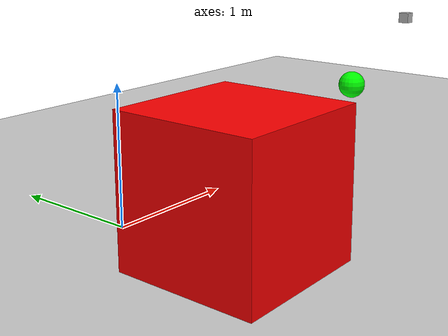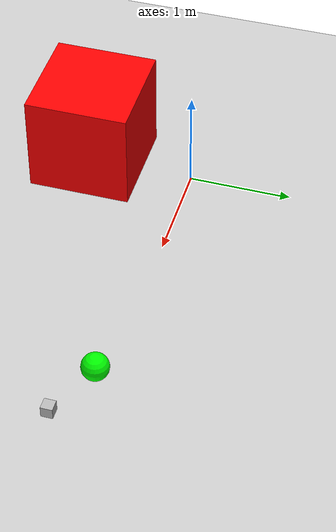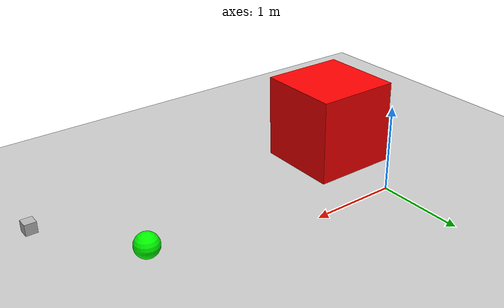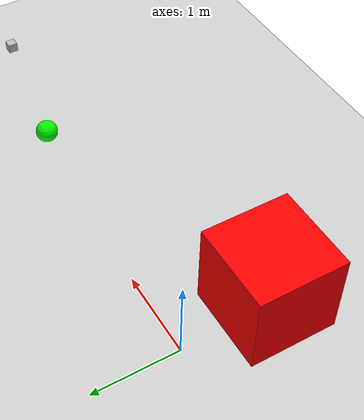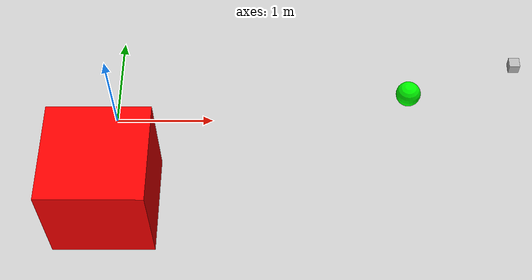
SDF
<?xml version="1.0" ?>
<!--
  Demo world with a widget displaying images coming from a camera sensor.
-->
<sdf version="1.6">
  <world name="camera_sensor">
    <!-- WORLD SETTINGS -->
    <physics name="1ms" type="ignored">
      <max_step_size>0.001</max_step_size>
      <real_time_factor>1.0</real_time_factor>
    </physics>
    <plugin
      filename="ignition-gazebo-physics-system"
      name="gz::sim::systems::Physics"> </plugin>
    <plugin
      filename="ignition-gazebo-sensors-system"
      name="gz::sim::systems::Sensors">
      <render_engine>ogre</render_engine>
    </plugin>
    <plugin
      filename="ignition-gazebo-user-commands-system"
      name="gz::sim::systems::UserCommands">
    </plugin>
    <plugin
      filename="ignition-gazebo-scene-broadcaster-system"
      name="gz::sim::systems::SceneBroadcaster">
    </plugin>

    <scene>
      <ambient>1.0 1.0 1.0</ambient>
      <background>0.8 0.8 0.8</background>
      <grid>true</grid>
    </scene>

    <gui fullscreen="0">

      <!-- 3D scene -->
      <plugin filename="MinimalScene" name="3D View">
        <ignition-gui>
          <title>3D View</title>
          <property type="bool" key="showTitleBar">false</property>
          <property type="string" key="state">docked</property>
        </ignition-gui>

        <engine>ogre2</engine>
        <scene>scene</scene>
        <ambient_light>0.4 0.4 0.4</ambient_light>
        <background_color>0.8 0.8 0.8</background_color>
        <camera_pose>-6 0 6 0 0.5 0</camera_pose>
      </plugin>

      <!-- Plugins that add functionality to the scene -->
      <plugin filename="EntityContextMenuPlugin" name="Entity context menu">
        <ignition-gui>
          <property key="state" type="string">floating</property>
          <property key="width" type="double">5</property>
          <property key="height" type="double">5</property>
          <property key="showTitleBar" type="bool">false</property>
        </ignition-gui>
      </plugin>
      <plugin filename="GzSceneManager" name="Scene Manager">
        <ignition-gui>
          <property key="resizable" type="bool">false</property>
          <property key="width" type="double">5</property>
          <property key="height" type="double">5</property>
          <property key="state" type="string">floating</property>
          <property key="showTitleBar" type="bool">false</property>
        </ignition-gui>
      </plugin>
      <plugin filename="InteractiveViewControl" name="Interactive view control">
        <ignition-gui>
          <property key="resizable" type="bool">false</property>
          <property key="width" type="double">5</property>
          <property key="height" type="double">5</property>
          <property key="state" type="string">floating</property>
          <property key="showTitleBar" type="bool">false</property>
        </ignition-gui>
      </plugin>
      <plugin filename="CameraTracking" name="Camera Tracking">
        <ignition-gui>
          <property key="resizable" type="bool">false</property>
          <property key="width" type="double">5</property>
          <property key="height" type="double">5</property>
          <property key="state" type="string">floating</property>
          <property key="showTitleBar" type="bool">false</property>
        </ignition-gui>
      </plugin>
      <!-- World control -->
      <plugin filename="WorldControl" name="World control">
        <ignition-gui>
          <title>World control</title>
          <property type="bool" key="showTitleBar">false</property>
          <property type="bool" key="resizable">false</property>
          <property type="double" key="height">72</property>
          <property type="double" key="width">121</property>
          <property type="double" key="z">1</property>

          <property type="string" key="state">floating</property>
          <anchors target="3D View">
            <line own="left" target="left"/>
            <line own="bottom" target="bottom"/>
          </anchors>
        </ignition-gui>

        <play_pause>true</play_pause>
        <step>true</step>
        <start_paused>true</start_paused>
        <use_event>true</use_event>

      </plugin>

      <!-- World statistics -->
      <plugin filename="WorldStats" name="World stats">
        <ignition-gui>
          <title>World stats</title>
          <property type="bool" key="showTitleBar">false</property>
          <property type="bool" key="resizable">false</property>
          <property type="double" key="height">110</property>
          <property type="double" key="width">290</property>
          <property type="double" key="z">1</property>

          <property type="string" key="state">floating</property>
          <anchors target="3D View">
            <line own="right" target="right"/>
            <line own="bottom" target="bottom"/>
          </anchors>
        </ignition-gui>

        <sim_time>true</sim_time>
        <real_time>true</real_time>
        <real_time_factor>true</real_time_factor>
        <iterations>true</iterations>
      </plugin>

      <plugin filename="ImageDisplay" name="Image Display">
        <ignition-gui>
          <property key="state" type="string">docked</property>
        </ignition-gui>
      </plugin>

      <!-- Inspector -->
      <plugin filename="ComponentInspector" name="Component inspector">
        <ignition-gui>
          <property type="string" key="state">docked</property>
        </ignition-gui>
      </plugin>

      <!-- Entity tree -->
      <plugin filename="EntityTree" name="Entity tree">
        <ignition-gui>
          <property type="string" key="state">docked</property>
        </ignition-gui>
      </plugin>
    </gui>

    <light type="directional" name="sun">
      <cast_shadows>true</cast_shadows>
      <pose>0 0 10 0 0 0</pose>
      <diffuse>0.8 0.8 0.8 1</diffuse>
      <specular>0.8 0.8 0.8 1</specular>
      <attenuation>
        <range>1000</range>
        <constant>0.9</constant>
        <linear>0.01</linear>
        <quadratic>0.001</quadratic>
      </attenuation>
      <direction>-0.5 0.1 -0.9</direction>
    </light>

    <model name="ground_plane">
      <static>true</static>
      <link name="link">
        <collision name="collision">
          <geometry>
            <plane>
              <normal>0 0 1</normal>
              <size>100 100</size>
            </plane>
          </geometry>
        </collision>
        <visual name="visual">
          <geometry>
            <plane>
              <normal>0 0 1</normal>
              <size>100 100</size>
            </plane>
          </geometry>
          <material>
            <ambient>0.8 0.8 0.8 1</ambient>
            <diffuse>0.8 0.8 0.8 1</diffuse>
            <specular>0.8 0.8 0.8 1</specular>
          </material>
        </visual>
      </link>
    </model>

    <model name="box">
      <pose>0 -1 0.5 0 0 0</pose>
      <link name="box_link">
        <inertial>
          <inertia>
            <ixx>1</ixx>
            <ixy>0</ixy>
            <ixz>0</ixz>
            <iyy>1</iyy>
            <iyz>0</iyz>
            <izz>1</izz>
          </inertia>
          <mass>1.0</mass>
        </inertial>
        <collision name="box_collision">
          <geometry>
            <box>
              <size>1 1 1</size>
            </box>
          </geometry>
        </collision>

        <visual name="box_visual">
          <geometry>
            <box>
              <size>1 1 1</size>
            </box>
          </geometry>
          <material>
            <ambient>1 0 0 1</ambient>
            <diffuse>1 0 0 1</diffuse>
            <specular>1 0 0 1</specular>
          </material>
        </visual>
      </link>
    </model>

    <model name="sphere">
      <static>true</static>
      <pose>3 0 0.5 0 0 0</pose>
      <link name="sphere_link">
        <collision name="sphere_collision">
          <geometry>
            <sphere>
              <radius>0.125</radius>
            </sphere>
          </geometry>
        </collision>
        <visual name="sphere_visual">
          <geometry>
            <sphere>
              <radius>0.125</radius>
            </sphere>
          </geometry>
          <material>
            <ambient>0 1 0 1</ambient>
            <diffuse>0 1 0 1</diffuse>
            <specular>0 1 0 1</specular>
          </material>
          <cast_shadows>false</cast_shadows>
        </visual>
      </link>
    </model>

    <model name="camera">
      <pose>4 0 1.0 0 0.0 3.14</pose>
      <link name="link">
        <pose>0.05 0.05 0.05 0 0 0</pose>
        <inertial>
          <mass>0.1</mass>
          <inertia>
            <ixx>0.000166667</ixx>
            <iyy>0.000166667</iyy>
            <izz>0.000166667</izz>
          </inertia>
        </inertial>
        <collision name="collision">
          <geometry>
            <box>
              <size>0.1 0.1 0.1</size>
            </box>
          </geometry>
        </collision>
        <visual name="visual">
          <geometry>
            <box>
              <size>0.1 0.1 0.1</size>
            </box>
          </geometry>
        </visual>
        <sensor name="camera" type="camera">
          <camera>
            <horizontal_fov>1.047</horizontal_fov>
            <image>
              <width>320</width>
              <height>240</height>
            </image>
            <clip>
              <near>0.1</near>
              <far>100</far>
            </clip>
          </camera>
          <always_on>1</always_on>
          <update_rate>30</update_rate>
          <visualize>true</visualize>
          <topic>camera</topic>
        </sensor>
      </link>
    </model>

  </world>
</sdf>
